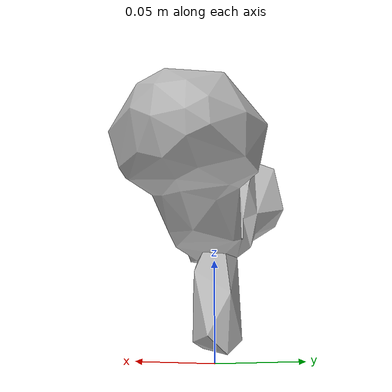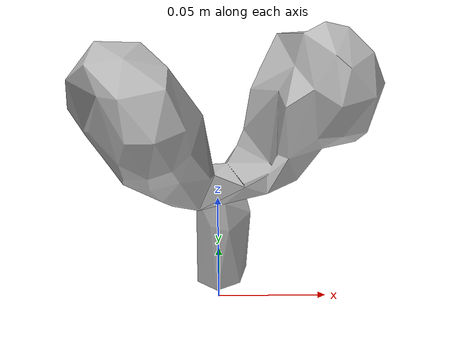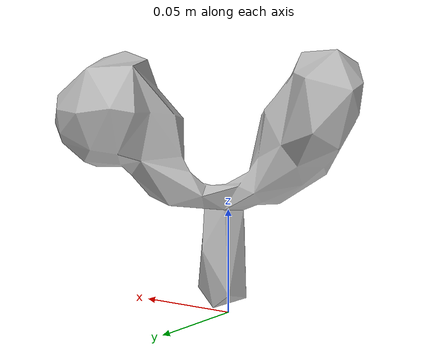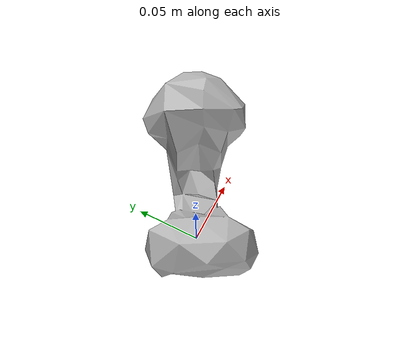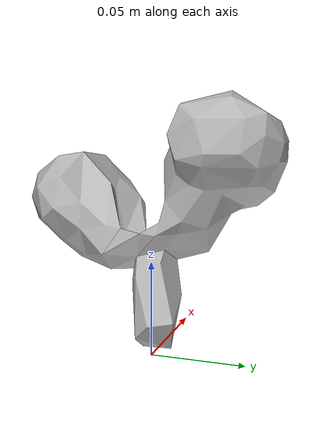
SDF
<?xml version='1.0'?>
<sdf version="1.4">
  <model name="072-k_toy_airplane">
    <static>false</static>
    <link name="link">
      <inertial>
        <pose>0.006504680772623892 0.0021476831844843905 0.08229778712787997 -1.568234516305349 -0.049727856220000345 2.086403087255861</pose>
        <mass>0.05525922401050079</mass>
        <inertia>
          <ixx>9.66142651555353e-05</ixx>
          <ixy>-1.0920435569166264e-21</ixy>
          <ixz>8.959474652217517e-21</ixz>
          <iyy>7.610611721615285e-05</iyy>
          <iyz>5.446837059427325e-22</iyz>
          <izz>4.827533697983263e-05</izz>
        </inertia>
      </inertial>
      <collision name="collision">
        <geometry>
          <mesh>
            <!-- Use a downsampled mesh for collisions -->
            <uri>model:///072-k_toy_airplane/072-k_toy_airplane_250_collision.stl</uri>
	        </mesh>
        </geometry>
        <surface>
      </surface>
      </collision>
      <visual name="visual">
        <geometry>
          <mesh>
            <uri>model:///072-k_toy_airplane/textured.obj</uri>
	        </mesh>
        </geometry>
        <material>
          <script>
            <uri>model:///072-k_toy_airplane/072-k_toy_airplane.material</uri>
            <name>072-k_toy_airplane</name>
          </script>
        </material>
      </visual>
    </link>
  </model>
</sdf>
